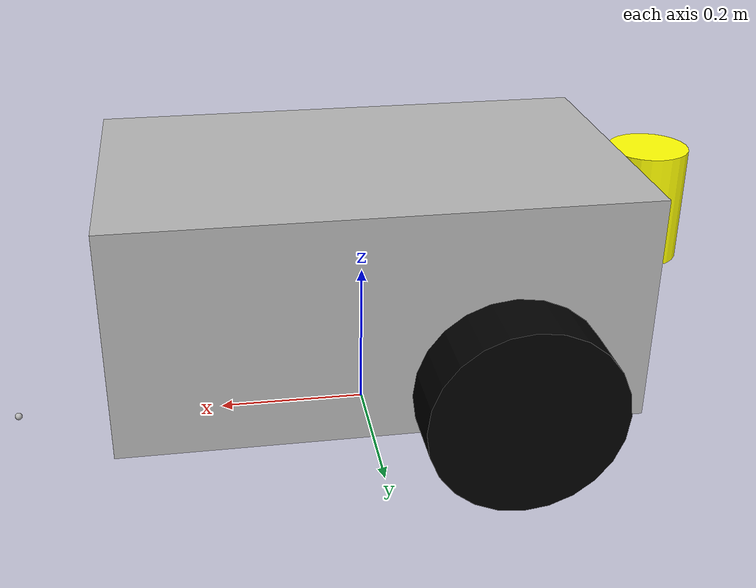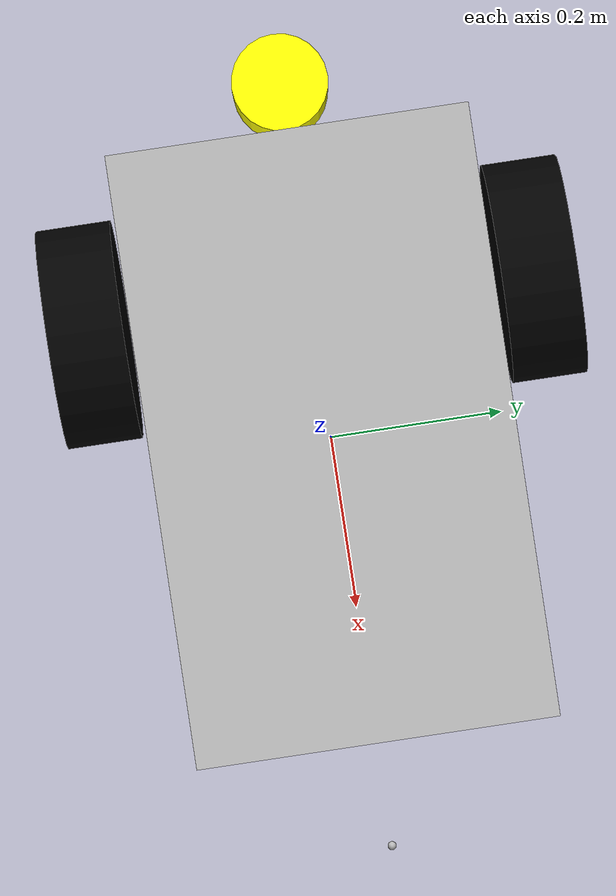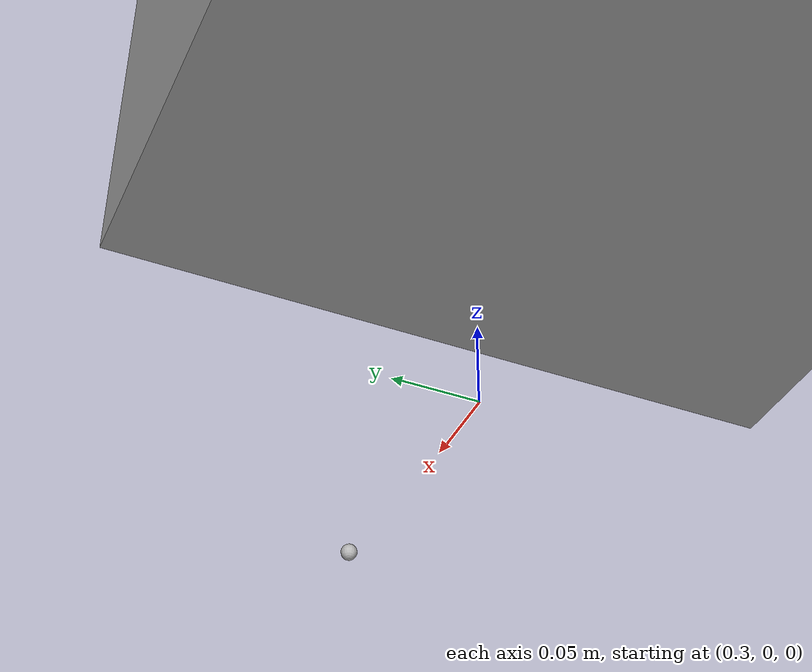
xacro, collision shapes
<?xml version="1.0"?>
<!-- Materials -->
<robot xmlns:xacro="http://www.ros.org/wiki/xacro" name="mp_500">

    <material name="Neobotix/Black">
        <color rgba="0.0 0.0 0.0 1.0"/>
    </material>

    <material name="Neobotix/Blue">
        <color rgba="0.0 0.0 0.8 1.0"/>
    </material>

    <material name="Neobotix/Green">
        <color rgba="0.0 0.8 0.0 1.0"/>
    </material>

    <material name="Neobotix/Grey">
        <color rgba="0.7 0.7 0.7 1.0"/>
    </material>

    <material name="Neobotix/Grey2">
        <color rgba="0.9 0.9 0.9 1.0"/>
    </material>

    <material name="Neobotix/Red">
        <color rgba="0.8 0.0 0.0 1.0"/>
    </material>

    <material name="Neobotix/White">
        <color rgba="1.0 1.0 1.0 1.0"/>
    </material>

    <material name="Neobotix/Yellow">
        <color rgba="1.0 1.0 0 10" />
    </material>

<!--++++++++++++++++++++++++++++++base_link++++++++++++++++++++++++++++++++++++++++++++++++++++-->
<!--++++++++++++++++++++body++++++++++++++++++++++++++++-->
  <link name="base_link">
       <inertial>
		  <mass value="25.67" />
		    <origin xyz="0 0 0.216" rpy="0 0 0"/>
		    <inertia ixx="0.54" ixy="0.0" ixz="0.0"
		             iyy="1.08" iyz="0.0"
		             izz="1.23" />
	  </inertial>
      <visual name='body'>
        <!--origin xyz="0.0 0.0 0.234" rpy="0 0 1.57" /--><!-- for cylinder -->
	<origin xyz="-0.160 0.0 0.09" rpy="0 0 -1.57" /><!-- for STL -->
              <geometry>
                 <mesh filename="package://neo_mp_500/robot_model/mp_500/meshes/MP500-BODY.STL" scale="0.01 0.01 0.01"/>
	    	<!--cylinder length="0.381" radius="0.2545"/-->
	    	<!--box size="0.445 0.277 0.17"/-->
              </geometry>
        <material name="Neobotix/Grey" />
       </visual>
      <collision name='body_collision'>
        <origin xyz="0 0 0.216" rpy="0 0 -1.57" />
        <geometry>
          <box size="0.400 0.676 0.300"/>
          <!--cylinder length="0.381" radius="0.2545"/-->
        </geometry>
      </collision>
</link>

<!--+++++++++++++++++++wheel_left_link++++++++++++++++++++++++-->
	<link name="wheel_left_link" type="wheel">
    	  <inertial>
      		<mass value="1" />
     		 <origin xyz="0 0 0" rpy="0 0 0" />
      		<inertia ixx="0.0045" ixy="0" ixz="0" iyy="0.0078" iyz="0" izz="0.0045" />
    	  </inertial>

    <visual>
     	<origin xyz="0 0 0" rpy="0 0 -1.57" />
     	<geometry>
		<mesh filename="package://neo_mp_500/robot_model/mp_500/meshes/MP500-WHEEL.STL" scale="0.01 0.01 0.01" />
     	</geometry>

     	<material name="Neobotix/Black" />
    </visual>
    <collision>
     	<origin xyz="0 0 0" rpy="0 1.57 -1.57" />
     	<geometry>
        	<cylinder radius="0.125" length="0.085"/>
     	</geometry>
    </collision>

</link>

<!--+++++++++++++++++++wheel_left_joint++++++++++++++++++++++++-->
	<joint name="wheel_left_joint" type="revolute">
		<origin xyz="-0.155 0.255 0.13" rpy="0 0 0" />
    	<axis xyz="0 1 0"/>
    	<limit effort="10000.0" lower="-1e+16" upper="1e+16" velocity="11.6"/>
    	<joint_properties damping="0.0" friction="0.0" />
    	<parent link="base_link" />
    	<child link="wheel_left_link" />
    </joint>

<!--+++++++++++++++++++wheel_right_link++++++++++++++++++++++++-->
<link name="wheel_right_link" type="wheel">
	<inertial>
		  <mass value="1" />
		  <origin xyz="0 0 0" rpy="0 0 0" />
		  <!--inertia ixx="0.0051" ixy="0" ixz="0" iyy="0.0051" iyz="0" izz="0.009" /-->
                  <inertia ixx="0.0045" ixy="0" ixz="0" iyy="0.0078" iyz="0" izz="0.0045" />
	</inertial>

		<visual>
		 	<origin xyz="0 0 0" rpy="0 0 -1.57" />
		 	<geometry>
		   <mesh filename="package://neo_mp_500/robot_model/mp_500/meshes/MP500-WHEEL.STL" scale="0.01 0.01 0.01" />
		 	</geometry>
		 	<material name="Neobotix/Black" />
		</visual>

		<collision>
		 	<origin xyz="0 0 0" rpy="0 1.57 -1.57" />
		 	<geometry>
		    	<cylinder radius="0.125" length="0.085"/>
		 	</geometry>
		</collision>
	</link>

<!--+++++++++++++++++++wheel_right_joint++++++++++++++++++++++++-->
	<joint name="wheel_right_joint" type="revolute">
    	<origin xyz="-0.155 -0.255 0.13" rpy="0 0 0" />
    	<axis xyz="0 1 0"/>
    	<limit effort="10000.0" lower="-1e+16" upper="1e+16" velocity="11.6"/>
    	<joint_properties damping="0.0" friction="0.0" />
    	<parent link="base_link" />
    	<child link="wheel_right_link" />
    </joint>

<!--+++++++++++++++++++laserscanner_front_joint++++++++++++++++++++++++-->
	<joint name="laserscanner_front_joint" type="fixed">
		  <axis xyz="0 0 1" />
		  <origin xyz="-0.39 0 0.281" rpy="0 0 0" />
		  <parent link="base_link"/>
		  <child link="laserscanner_front_link"/>
	</joint>

<!--+++++++++++++++++++laserscanner_front_link++++++++++++++++++++++++-->
	<link name="laserscanner_front_link" type="laser">
		<inertial>
			<mass value="0.01" />
			<origin xyz="0 0 0" rpy="3.14 0 -1.57" />
			<inertia ixx="0.001" ixy="0" ixz="0" iyy="0.001" iyz="0" izz="0.001" />
	  	</inertial>
	  	<visual>
			<origin xyz="0 0 -0.04" rpy="3.14 0 -1.57" />
			<geometry>
                             <!--cylinder length="0.154" radius="0.053" /-->
                             <mesh filename="package://neo_mp_500/robot_model/mp_500/meshes/SICK-S300.STL" />
			</geometry>
			<material name="Neobotix/Yellow" />
	  	</visual>
	  	<collision>
			<origin xyz="0 0 0" rpy="3.14 0 -1.57" />
			<geometry>
		  	<cylinder length="0.154" radius="0.053" />
			</geometry>
	  	</collision>
	</link>
<!--+++++++++++++++ wheel_hanger+++++++++++++++++++++++++++-->
<link name="hanger">
	<inertial>
		  <mass value="0.01" />
		  <origin xyz="0 0 0" rpy="0 0 0" />
		  <inertia ixx="0.0013" ixy="0" ixz="0" iyy="0.0013" iyz="0" izz="0.0013" />
	</inertial>
	<visual>
	 	<origin xyz="0 0 0" rpy="0 0 -1.57" />
	 	<geometry>
		      <mesh filename="package://neo_mp_500/robot_model/mp_500/meshes/HANGER-WHEEL.STL" scale="0.01 0.01 0.01" />
		 </geometry>
		 <material name="Neobotix/Grey" />
	</visual>
        <collision>
		 <origin xyz="0 0 0" rpy="0 0 -1.57" />
		 <geometry>
          	 <sphere radius="0.00115"/>
		 </geometry>
	</collision>
</link>

<joint name="hanger_joint" type="fixed">
    	<origin xyz="0.255 0 0.11" rpy="0 0 0"/>
    	<axis xyz="0 0 1"/>
    	<limit effort="10000.0" lower="-1e+16" upper="1e+16" velocity="13.5"/>
    	<joint_properties damping="0.0" friction="0.0" />
    	<parent link="base_link" />
    	<child link="hanger" />
    </joint>

<!--+++++++++++++++ castor_front +++++++++++++++++++++++++++-->
<link name="castor_front">
	<inertial>
		  <mass value="0.25" />
		  <origin xyz="0 0 0" rpy="0 0 0" />
		  <inertia ixx="0.000025" ixy="0" ixz="0" iyy="0.000025" iyz="0" izz="0.000025" />
	</inertial>
	<visual>
	 	<origin xyz="0 0 0" rpy="0 0 0" />
	 	<geometry>
		   <sphere radius="0.005"/>
		 </geometry>
		 <material name="Neobotix/Grey" />
	</visual>
        <collision>
		 <origin xyz="0 0 0" rpy="0 0 0" />
		 <geometry>
          	 <sphere radius="0.005"/>
		 </geometry>
	</collision>
</link>
<gazebo reference="caster_front">
            <mu1 value="0.01" />
            <mu2 value="0.01" />
            <kp  value="1.0" />
            <kd  value="1.0" />
</gazebo>

<joint name="castor_front_joint" type="fixed">
    	<origin xyz="0.48 0 0.01" rpy="0 0 0"/>
    	<axis xyz="0 0 1"/>
    	<parent link="base_link" />
    	<child link="castor_front" />
    </joint>

<!--+++++++++++++++ castor_back +++++++++++++++++++++++++++-->
<link name="castor_back">
	<inertial>
		  <mass value="0.25" />
		  <origin xyz="0 0 0" rpy="0 0 0" />
		  <inertia ixx="0.000025" ixy="0" ixz="0" iyy="0.000025" iyz="0" izz="0.000025" />
	</inertial>
	<visual>
	 	<origin xyz="0 0 0" rpy="0 0 0" />
	 	<geometry>
		   <sphere radius="0.005"/>
		 </geometry>
		 <material name="Neobotix/Grey" />
	</visual>
        <collision>
		 <origin xyz="0 0 0" rpy="0 0 0" />
		 <geometry>
          	 <sphere radius="0.005"/>
		 </geometry>
	</collision>
</link>
<gazebo reference="caster_back">
            <mu1 value="0.01" />
            <mu2 value="0.01" />
            <kp  value="1.0" />
            <kd  value="1.0" />
</gazebo>

<joint name="castor_back_joint" type="fixed">
    	<origin xyz="-0.21 0 0.01" rpy="0 0 0"/>
    	<axis xyz="0 0 1"/>
    	<parent link="base_link" />
    	<child link="castor_back" />
    </joint>

<transmission name="wheel_left_trans">
    <type>transmission_interface/SimpleTransmission</type>
    <joint name="wheel_left_joint">
      <hardwareInterface>hardware_interface/VelocityJointInterface</hardwareInterface>
    </joint>
    <actuator name="wheel_left_motor">
      <hardwareInterface>hardware_interface/EffortJointInterface</hardwareInterface>
      <mechanicalReduction>0.1</mechanicalReduction>
    </actuator>
  </transmission>

  <transmission name="wheel_right_trans">
    <type>transmission_interface/SimpleTransmission</type>
    <joint name="wheel_right_joint">
      <hardwareInterface>hardware_interface/VelocityJointInterface</hardwareInterface>
    </joint>
    <actuator name="wheel_right_motor">
      <hardwareInterface>hardware_interface/EffortJointInterface</hardwareInterface>
      <mechanicalReduction>0.1</mechanicalReduction>
    </actuator>
  </transmission>

 <gazebo>
    <plugin name="differential_drive_controller" filename="libgazebo_ros_diff_drive.so">

      <robotNamespace>/mp_500</robotNamespace>

      <alwaysOn>true</alwaysOn>
      <updateRate>100</updateRate>
      <leftJoint>wheel_left_joint</leftJoint>
      <rightJoint>wheel_right_joint</rightJoint>
      <wheelSeparation>0.51</wheelSeparation>
      <wheelDiameter>0.125</wheelDiameter>
      <torque>45</torque>
      <commandTopic>/mp500lwa4d/mobile_base_controller/cmd_vel</commandTopic>
      <odometryTopic>odom</odometryTopic>
      <odometryFrame>map</odometryFrame>
      <robotBaseFrame>mp500/base_link</robotBaseFrame>

      <legacyMode>false</legacyMode>

      <rosDebugLevel>Debug</rosDebugLevel>
      <publishWheelTF>true</publishWheelTF>
      <publishWheelJointState>true</publishWheelJointState>
      <wheelAcceleration>0.01</wheelAcceleration>
      <wheelTorque>50</wheelTorque>
      <publishTf>1</publishTf>
      <odometrySource>encoder</odometrySource>
    </plugin>

  </gazebo>

</robot>
